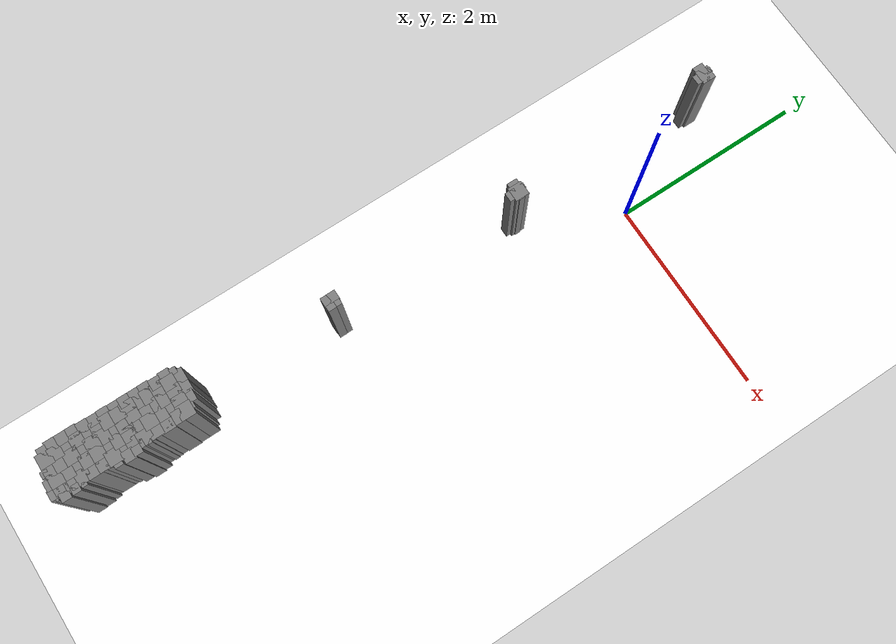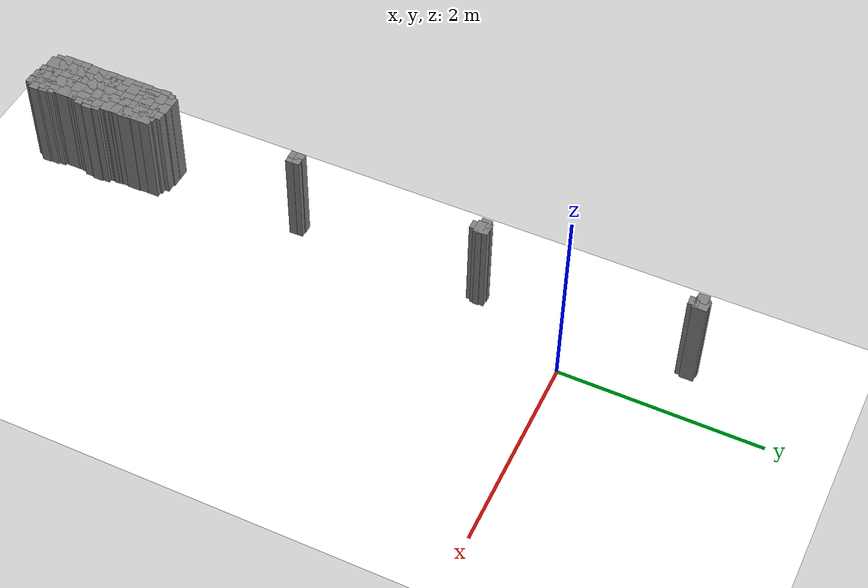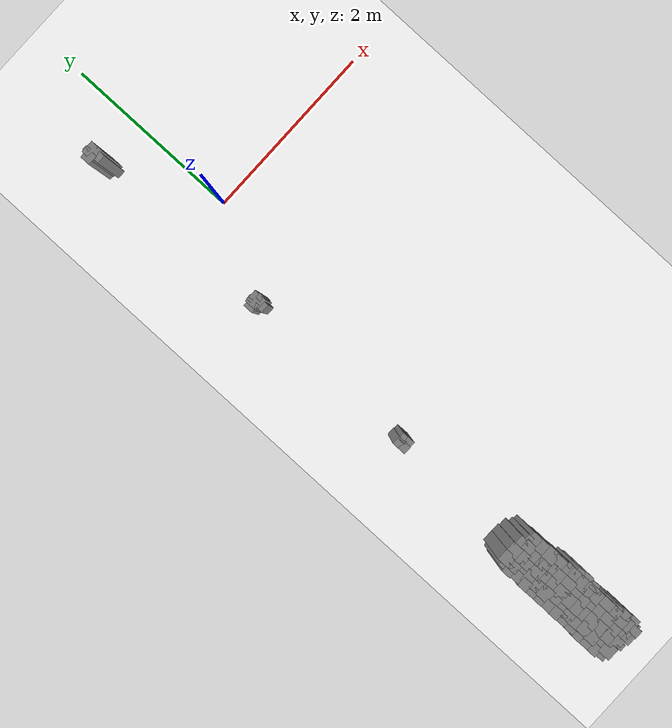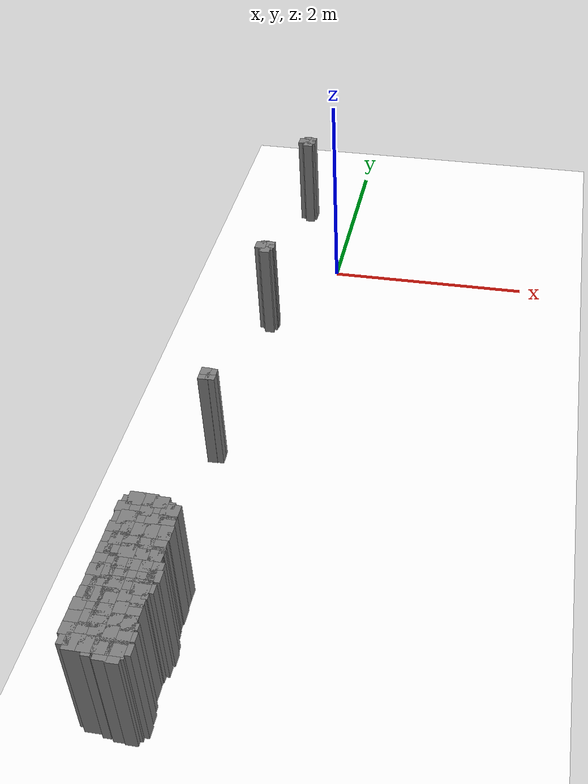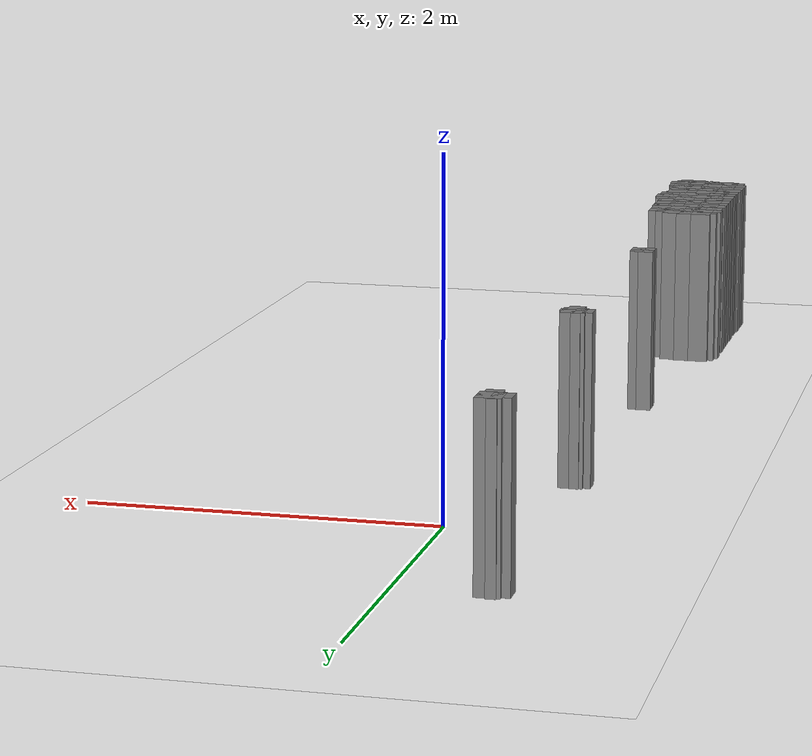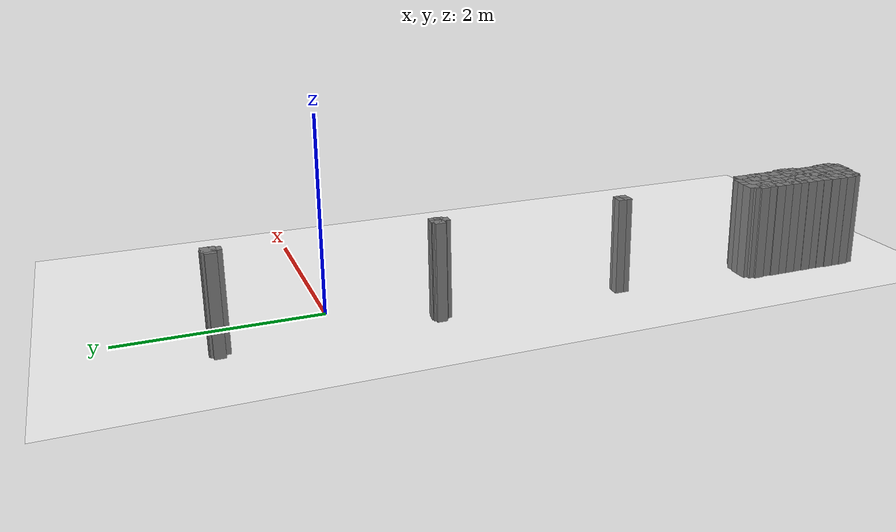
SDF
<?xml version="1.0" ?>
<sdf version="1.6">
  <world name="default">
    <model name="group_0">
      <pose>-0.56 1.09 0.5 0 0 0</pose>
      <static>true</static>
      <link name="link">
        <collision name="collision">
          <geometry>
            <box>
              <size>0.10846621290596761 0.10846621290596761 1</size>
            </box>
          </geometry>
        </collision>
        <visual name="visual">
          <geometry>
            <box>
              <size>0.10846621290596761 0.10846621290596761 1</size>
            </box>
          </geometry>
          <material>
            <ambient>0.5 0.5 0.5 1</ambient>
          </material>
        </visual>
      </link>
    </model>
    <model name="group_1">
      <pose>-0.56 1.04 0.5 0 0 0</pose>
      <static>true</static>
      <link name="link">
        <collision name="collision">
          <geometry>
            <box>
              <size>0.01779331107974701 0.01779331107974701 1</size>
            </box>
          </geometry>
        </collision>
        <visual name="visual">
          <geometry>
            <box>
              <size>0.01779331107974701 0.01779331107974701 1</size>
            </box>
          </geometry>
          <material>
            <ambient>0.5 0.5 0.5 1</ambient>
          </material>
        </visual>
      </link>
    </model>
    <model name="group_2">
      <pose>-0.50 1.10 0.5 0 0 0</pose>
      <static>true</static>
      <link name="link">
        <collision name="collision">
          <geometry>
            <box>
              <size>0.1373275872426393 0.1373275872426393 1</size>
            </box>
          </geometry>
        </collision>
        <visual name="visual">
          <geometry>
            <box>
              <size>0.1373275872426393 0.1373275872426393 1</size>
            </box>
          </geometry>
          <material>
            <ambient>0.5 0.5 0.5 1</ambient>
          </material>
        </visual>
      </link>
    </model>
    <model name="group_3">
      <pose>-0.52 1.15 0.5 0 0 0</pose>
      <static>true</static>
      <link name="link">
        <collision name="collision">
          <geometry>
            <box>
              <size>0.055814840051728404 0.055814840051728404 1</size>
            </box>
          </geometry>
        </collision>
        <visual name="visual">
          <geometry>
            <box>
              <size>0.055814840051728404 0.055814840051728404 1</size>
            </box>
          </geometry>
          <material>
            <ambient>0.5 0.5 0.5 1</ambient>
          </material>
        </visual>
      </link>
    </model>
    <model name="group_4">
      <pose>-0.50 1.03 0.5 0 0 0</pose>
      <static>true</static>
      <link name="link">
        <collision name="collision">
          <geometry>
            <box>
              <size>0.09426481850733141 0.09426481850733141 1</size>
            </box>
          </geometry>
        </collision>
        <visual name="visual">
          <geometry>
            <box>
              <size>0.09426481850733141 0.09426481850733141 1</size>
            </box>
          </geometry>
          <material>
            <ambient>0.5 0.5 0.5 1</ambient>
          </material>
        </visual>
      </link>
    </model>
    <model name="group_5">
      <pose>-0.77 -4.50 0.5 0 0 0</pose>
      <static>true</static>
      <link name="link">
        <collision name="collision">
          <geometry>
            <box>
              <size>0.10640647050192958 0.10640647050192958 1</size>
            </box>
          </geometry>
        </collision>
        <visual name="visual">
          <geometry>
            <box>
              <size>0.10640647050192958 0.10640647050192958 1</size>
            </box>
          </geometry>
          <material>
            <ambient>0.5 0.5 0.5 1</ambient>
          </material>
        </visual>
      </link>
    </model>
    <model name="group_6">
      <pose>-0.77 -4.42 0.5 0 0 0</pose>
      <static>true</static>
      <link name="link">
        <collision name="collision">
          <geometry>
            <box>
              <size>0.06263739789327895 0.06263739789327895 1</size>
            </box>
          </geometry>
        </collision>
        <visual name="visual">
          <geometry>
            <box>
              <size>0.06263739789327895 0.06263739789327895 1</size>
            </box>
          </geometry>
          <material>
            <ambient>0.5 0.5 0.5 1</ambient>
          </material>
        </visual>
      </link>
    </model>
    <model name="group_7">
      <pose>-0.77 -4.90 0.5 0 0 0</pose>
      <static>true</static>
      <link name="link">
        <collision name="collision">
          <geometry>
            <box>
              <size>0.10278978921715472 0.10278978921715472 1</size>
            </box>
          </geometry>
        </collision>
        <visual name="visual">
          <geometry>
            <box>
              <size>0.10278978921715472 0.10278978921715472 1</size>
            </box>
          </geometry>
          <material>
            <ambient>0.5 0.5 0.5 1</ambient>
          </material>
        </visual>
      </link>
    </model>
    <model name="group_8">
      <pose>-0.77 -4.80 0.5 0 0 0</pose>
      <static>true</static>
      <link name="link">
        <collision name="collision">
          <geometry>
            <box>
              <size>0.1011463659081783 0.1011463659081783 1</size>
            </box>
          </geometry>
        </collision>
        <visual name="visual">
          <geometry>
            <box>
              <size>0.1011463659081783 0.1011463659081783 1</size>
            </box>
          </geometry>
          <material>
            <ambient>0.5 0.5 0.5 1</ambient>
          </material>
        </visual>
      </link>
    </model>
    <model name="group_9">
      <pose>-0.77 -4.70 0.5 0 0 0</pose>
      <static>true</static>
      <link name="link">
        <collision name="collision">
          <geometry>
            <box>
              <size>0.10487606401113828 0.10487606401113828 1</size>
            </box>
          </geometry>
        </collision>
        <visual name="visual">
          <geometry>
            <box>
              <size>0.10487606401113828 0.10487606401113828 1</size>
            </box>
          </geometry>
          <material>
            <ambient>0.5 0.5 0.5 1</ambient>
          </material>
        </visual>
      </link>
    </model>
    <model name="group_10">
      <pose>-0.76 -4.60 0.5 0 0 0</pose>
      <static>true</static>
      <link name="link">
        <collision name="collision">
          <geometry>
            <box>
              <size>0.10485238748119301 0.10485238748119301 1</size>
            </box>
          </geometry>
        </collision>
        <visual name="visual">
          <geometry>
            <box>
              <size>0.10485238748119301 0.10485238748119301 1</size>
            </box>
          </geometry>
          <material>
            <ambient>0.5 0.5 0.5 1</ambient>
          </material>
        </visual>
      </link>
    </model>
    <model name="group_11">
      <pose>-0.56 -1.00 0.5 0 0 0</pose>
      <static>true</static>
      <link name="link">
        <collision name="collision">
          <geometry>
            <box>
              <size>0.10318755587273323 0.10318755587273323 1</size>
            </box>
          </geometry>
        </collision>
        <visual name="visual">
          <geometry>
            <box>
              <size>0.10318755587273323 0.10318755587273323 1</size>
            </box>
          </geometry>
          <material>
            <ambient>0.5 0.5 0.5 1</ambient>
          </material>
        </visual>
      </link>
    </model>
    <model name="group_12">
      <pose>-0.45 1.10 0.5 0 0 0</pose>
      <static>true</static>
      <link name="link">
        <collision name="collision">
          <geometry>
            <box>
              <size>0.03495496692460551 0.03495496692460551 1</size>
            </box>
          </geometry>
        </collision>
        <visual name="visual">
          <geometry>
            <box>
              <size>0.03495496692460551 0.03495496692460551 1</size>
            </box>
          </geometry>
          <material>
            <ambient>0.5 0.5 0.5 1</ambient>
          </material>
        </visual>
      </link>
    </model>
    <model name="group_13">
      <pose>-0.77 -5.10 0.5 0 0 0</pose>
      <static>true</static>
      <link name="link">
        <collision name="collision">
          <geometry>
            <box>
              <size>0.10752174278107636 0.10752174278107636 1</size>
            </box>
          </geometry>
        </collision>
        <visual name="visual">
          <geometry>
            <box>
              <size>0.10752174278107636 0.10752174278107636 1</size>
            </box>
          </geometry>
          <material>
            <ambient>0.5 0.5 0.5 1</ambient>
          </material>
        </visual>
      </link>
    </model>
    <model name="group_14">
      <pose>-0.77 -5.00 0.5 0 0 0</pose>
      <static>true</static>
      <link name="link">
        <collision name="collision">
          <geometry>
            <box>
              <size>0.09881197196613331 0.09881197196613331 1</size>
            </box>
          </geometry>
        </collision>
        <visual name="visual">
          <geometry>
            <box>
              <size>0.09881197196613331 0.09881197196613331 1</size>
            </box>
          </geometry>
          <material>
            <ambient>0.5 0.5 0.5 1</ambient>
          </material>
        </visual>
      </link>
    </model>
    <model name="group_15">
      <pose>-0.55 -1.06 0.5 0 0 0</pose>
      <static>true</static>
      <link name="link">
        <collision name="collision">
          <geometry>
            <box>
              <size>0.01779331107974701 0.01779331107974701 1</size>
            </box>
          </geometry>
        </collision>
        <visual name="visual">
          <geometry>
            <box>
              <size>0.01779331107974701 0.01779331107974701 1</size>
            </box>
          </geometry>
          <material>
            <ambient>0.5 0.5 0.5 1</ambient>
          </material>
        </visual>
      </link>
    </model>
    <model name="group_16">
      <pose>-0.78 -5.50 0.5 0 0 0</pose>
      <static>true</static>
      <link name="link">
        <collision name="collision">
          <geometry>
            <box>
              <size>0.10456344462860367 0.10456344462860367 1</size>
            </box>
          </geometry>
        </collision>
        <visual name="visual">
          <geometry>
            <box>
              <size>0.10456344462860367 0.10456344462860367 1</size>
            </box>
          </geometry>
          <material>
            <ambient>0.5 0.5 0.5 1</ambient>
          </material>
        </visual>
      </link>
    </model>
    <model name="group_17">
      <pose>-0.78 -5.40 0.5 0 0 0</pose>
      <static>true</static>
      <link name="link">
        <collision name="collision">
          <geometry>
            <box>
              <size>0.10675986647848676 0.10675986647848676 1</size>
            </box>
          </geometry>
        </collision>
        <visual name="visual">
          <geometry>
            <box>
              <size>0.10675986647848676 0.10675986647848676 1</size>
            </box>
          </geometry>
          <material>
            <ambient>0.5 0.5 0.5 1</ambient>
          </material>
        </visual>
      </link>
    </model>
    <model name="group_18">
      <pose>-0.77 -5.30 0.5 0 0 0</pose>
      <static>true</static>
      <link name="link">
        <collision name="collision">
          <geometry>
            <box>
              <size>0.10752174278107617 0.10752174278107617 1</size>
            </box>
          </geometry>
        </collision>
        <visual name="visual">
          <geometry>
            <box>
              <size>0.10752174278107617 0.10752174278107617 1</size>
            </box>
          </geometry>
          <material>
            <ambient>0.5 0.5 0.5 1</ambient>
          </material>
        </visual>
      </link>
    </model>
    <model name="group_19">
      <pose>-0.77 -5.20 0.5 0 0 0</pose>
      <static>true</static>
      <link name="link">
        <collision name="collision">
          <geometry>
            <box>
              <size>0.09881197196613142 0.09881197196613142 1</size>
            </box>
          </geometry>
        </collision>
        <visual name="visual">
          <geometry>
            <box>
              <size>0.09881197196613142 0.09881197196613142 1</size>
            </box>
          </geometry>
          <material>
            <ambient>0.5 0.5 0.5 1</ambient>
          </material>
        </visual>
      </link>
    </model>
    <model name="group_20">
      <pose>-0.70 -4.50 0.5 0 0 0</pose>
      <static>true</static>
      <link name="link">
        <collision name="collision">
          <geometry>
            <box>
              <size>0.12847871527930452 0.12847871527930452 1</size>
            </box>
          </geometry>
        </collision>
        <visual name="visual">
          <geometry>
            <box>
              <size>0.12847871527930452 0.12847871527930452 1</size>
            </box>
          </geometry>
          <material>
            <ambient>0.5 0.5 0.5 1</ambient>
          </material>
        </visual>
      </link>
    </model>
    <model name="group_21">
      <pose>-0.70 -4.41 0.5 0 0 0</pose>
      <static>true</static>
      <link name="link">
        <collision name="collision">
          <geometry>
            <box>
              <size>0.1284380566008964 0.1284380566008964 1</size>
            </box>
          </geometry>
        </collision>
        <visual name="visual">
          <geometry>
            <box>
              <size>0.1284380566008964 0.1284380566008964 1</size>
            </box>
          </geometry>
          <material>
            <ambient>0.5 0.5 0.5 1</ambient>
          </material>
        </visual>
      </link>
    </model>
    <model name="group_22">
      <pose>-0.50 -1.00 0.5 0 0 0</pose>
      <static>true</static>
      <link name="link">
        <collision name="collision">
          <geometry>
            <box>
              <size>0.14193066059836684 0.14193066059836684 1</size>
            </box>
          </geometry>
        </collision>
        <visual name="visual">
          <geometry>
            <box>
              <size>0.14193066059836684 0.14193066059836684 1</size>
            </box>
          </geometry>
          <material>
            <ambient>0.5 0.5 0.5 1</ambient>
          </material>
        </visual>
      </link>
    </model>
    <model name="group_23">
      <pose>-0.52 -0.95 0.5 0 0 0</pose>
      <static>true</static>
      <link name="link">
        <collision name="collision">
          <geometry>
            <box>
              <size>0.055814840051728536 0.055814840051728536 1</size>
            </box>
          </geometry>
        </collision>
        <visual name="visual">
          <geometry>
            <box>
              <size>0.055814840051728536 0.055814840051728536 1</size>
            </box>
          </geometry>
          <material>
            <ambient>0.5 0.5 0.5 1</ambient>
          </material>
        </visual>
      </link>
    </model>
    <model name="group_24">
      <pose>-0.78 -5.60 0.5 0 0 0</pose>
      <static>true</static>
      <link name="link">
        <collision name="collision">
          <geometry>
            <box>
              <size>0.10736999835150011 0.10736999835150011 1</size>
            </box>
          </geometry>
        </collision>
        <visual name="visual">
          <geometry>
            <box>
              <size>0.10736999835150011 0.10736999835150011 1</size>
            </box>
          </geometry>
          <material>
            <ambient>0.5 0.5 0.5 1</ambient>
          </material>
        </visual>
      </link>
    </model>
    <model name="group_25">
      <pose>-0.70 -4.70 0.5 0 0 0</pose>
      <static>true</static>
      <link name="link">
        <collision name="collision">
          <geometry>
            <box>
              <size>0.13736640136554099 0.13736640136554099 1</size>
            </box>
          </geometry>
        </collision>
        <visual name="visual">
          <geometry>
            <box>
              <size>0.13736640136554099 0.13736640136554099 1</size>
            </box>
          </geometry>
          <material>
            <ambient>0.5 0.5 0.5 1</ambient>
          </material>
        </visual>
      </link>
    </model>
    <model name="group_26">
      <pose>-0.70 -4.60 0.5 0 0 0</pose>
      <static>true</static>
      <link name="link">
        <collision name="collision">
          <geometry>
            <box>
              <size>0.13697679180245897 0.13697679180245897 1</size>
            </box>
          </geometry>
        </collision>
        <visual name="visual">
          <geometry>
            <box>
              <size>0.13697679180245897 0.13697679180245897 1</size>
            </box>
          </geometry>
          <material>
            <ambient>0.5 0.5 0.5 1</ambient>
          </material>
        </visual>
      </link>
    </model>
    <model name="group_27">
      <pose>-0.50 -1.07 0.5 0 0 0</pose>
      <static>true</static>
      <link name="link">
        <collision name="collision">
          <geometry>
            <box>
              <size>0.0942648185073315 0.0942648185073315 1</size>
            </box>
          </geometry>
        </collision>
        <visual name="visual">
          <geometry>
            <box>
              <size>0.0942648185073315 0.0942648185073315 1</size>
            </box>
          </geometry>
          <material>
            <ambient>0.5 0.5 0.5 1</ambient>
          </material>
        </visual>
      </link>
    </model>
    <model name="group_28">
      <pose>-0.77 -5.69 0.5 0 0 0</pose>
      <static>true</static>
      <link name="link">
        <collision name="collision">
          <geometry>
            <box>
              <size>0.08752847982169377 0.08752847982169377 1</size>
            </box>
          </geometry>
        </collision>
        <visual name="visual">
          <geometry>
            <box>
              <size>0.08752847982169377 0.08752847982169377 1</size>
            </box>
          </geometry>
          <material>
            <ambient>0.5 0.5 0.5 1</ambient>
          </material>
        </visual>
      </link>
    </model>
    <model name="group_29">
      <pose>-0.70 -4.90 0.5 0 0 0</pose>
      <static>true</static>
      <link name="link">
        <collision name="collision">
          <geometry>
            <box>
              <size>0.13622161737658786 0.13622161737658786 1</size>
            </box>
          </geometry>
        </collision>
        <visual name="visual">
          <geometry>
            <box>
              <size>0.13622161737658786 0.13622161737658786 1</size>
            </box>
          </geometry>
          <material>
            <ambient>0.5 0.5 0.5 1</ambient>
          </material>
        </visual>
      </link>
    </model>
    <model name="group_30">
      <pose>-0.70 -4.80 0.5 0 0 0</pose>
      <static>true</static>
      <link name="link">
        <collision name="collision">
          <geometry>
            <box>
              <size>0.12417966687291751 0.12417966687291751 1</size>
            </box>
          </geometry>
        </collision>
        <visual name="visual">
          <geometry>
            <box>
              <size>0.12417966687291751 0.12417966687291751 1</size>
            </box>
          </geometry>
          <material>
            <ambient>0.5 0.5 0.5 1</ambient>
          </material>
        </visual>
      </link>
    </model>
    <model name="group_31">
      <pose>-0.70 -5.10 0.5 0 0 0</pose>
      <static>true</static>
      <link name="link">
        <collision name="collision">
          <geometry>
            <box>
              <size>0.13512316920300252 0.13512316920300252 1</size>
            </box>
          </geometry>
        </collision>
        <visual name="visual">
          <geometry>
            <box>
              <size>0.13512316920300252 0.13512316920300252 1</size>
            </box>
          </geometry>
          <material>
            <ambient>0.5 0.5 0.5 1</ambient>
          </material>
        </visual>
      </link>
    </model>
    <model name="group_32">
      <pose>-0.70 -5.00 0.5 0 0 0</pose>
      <static>true</static>
      <link name="link">
        <collision name="collision">
          <geometry>
            <box>
              <size>0.12389432661931286 0.12389432661931286 1</size>
            </box>
          </geometry>
        </collision>
        <visual name="visual">
          <geometry>
            <box>
              <size>0.12389432661931286 0.12389432661931286 1</size>
            </box>
          </geometry>
          <material>
            <ambient>0.5 0.5 0.5 1</ambient>
          </material>
        </visual>
      </link>
    </model>
    <model name="group_33">
      <pose>-0.70 -5.30 0.5 0 0 0</pose>
      <static>true</static>
      <link name="link">
        <collision name="collision">
          <geometry>
            <box>
              <size>0.13565471752386224 0.13565471752386224 1</size>
            </box>
          </geometry>
        </collision>
        <visual name="visual">
          <geometry>
            <box>
              <size>0.13565471752386224 0.13565471752386224 1</size>
            </box>
          </geometry>
          <material>
            <ambient>0.5 0.5 0.5 1</ambient>
          </material>
        </visual>
      </link>
    </model>
    <model name="group_34">
      <pose>-0.70 -5.20 0.5 0 0 0</pose>
      <static>true</static>
      <link name="link">
        <collision name="collision">
          <geometry>
            <box>
              <size>0.12389432661931538 0.12389432661931538 1</size>
            </box>
          </geometry>
        </collision>
        <visual name="visual">
          <geometry>
            <box>
              <size>0.12389432661931538 0.12389432661931538 1</size>
            </box>
          </geometry>
          <material>
            <ambient>0.5 0.5 0.5 1</ambient>
          </material>
        </visual>
      </link>
    </model>
    <model name="group_35">
      <pose>-0.58 -2.98 0.5 0 0 0</pose>
      <static>true</static>
      <link name="link">
        <collision name="collision">
          <geometry>
            <box>
              <size>0.0900762334629447 0.0900762334629447 1</size>
            </box>
          </geometry>
        </collision>
        <visual name="visual">
          <geometry>
            <box>
              <size>0.0900762334629447 0.0900762334629447 1</size>
            </box>
          </geometry>
          <material>
            <ambient>0.5 0.5 0.5 1</ambient>
          </material>
        </visual>
      </link>
    </model>
    <model name="group_36">
      <pose>-0.58 -2.92 0.5 0 0 0</pose>
      <static>true</static>
      <link name="link">
        <collision name="collision">
          <geometry>
            <box>
              <size>0.09080988017727099 0.09080988017727099 1</size>
            </box>
          </geometry>
        </collision>
        <visual name="visual">
          <geometry>
            <box>
              <size>0.09080988017727099 0.09080988017727099 1</size>
            </box>
          </geometry>
          <material>
            <ambient>0.5 0.5 0.5 1</ambient>
          </material>
        </visual>
      </link>
    </model>
    <model name="group_37">
      <pose>-0.70 -5.50 0.5 0 0 0</pose>
      <static>true</static>
      <link name="link">
        <collision name="collision">
          <geometry>
            <box>
              <size>0.13808311158966338 0.13808311158966338 1</size>
            </box>
          </geometry>
        </collision>
        <visual name="visual">
          <geometry>
            <box>
              <size>0.13808311158966338 0.13808311158966338 1</size>
            </box>
          </geometry>
          <material>
            <ambient>0.5 0.5 0.5 1</ambient>
          </material>
        </visual>
      </link>
    </model>
    <model name="group_38">
      <pose>-0.70 -5.40 0.5 0 0 0</pose>
      <static>true</static>
      <link name="link">
        <collision name="collision">
          <geometry>
            <box>
              <size>0.12389432661931521 0.12389432661931521 1</size>
            </box>
          </geometry>
        </collision>
        <visual name="visual">
          <geometry>
            <box>
              <size>0.12389432661931521 0.12389432661931521 1</size>
            </box>
          </geometry>
          <material>
            <ambient>0.5 0.5 0.5 1</ambient>
          </material>
        </visual>
      </link>
    </model>
    <model name="group_39">
      <pose>-0.70 -5.70 0.5 0 0 0</pose>
      <static>true</static>
      <link name="link">
        <collision name="collision">
          <geometry>
            <box>
              <size>0.13731039260981232 0.13731039260981232 1</size>
            </box>
          </geometry>
        </collision>
        <visual name="visual">
          <geometry>
            <box>
              <size>0.13731039260981232 0.13731039260981232 1</size>
            </box>
          </geometry>
          <material>
            <ambient>0.5 0.5 0.5 1</ambient>
          </material>
        </visual>
      </link>
    </model>
    <model name="group_40">
      <pose>-0.70 -5.60 0.5 0 0 0</pose>
      <static>true</static>
      <link name="link">
        <collision name="collision">
          <geometry>
            <box>
              <size>0.12389432661931789 0.12389432661931789 1</size>
            </box>
          </geometry>
        </collision>
        <visual name="visual">
          <geometry>
            <box>
              <size>0.12389432661931789 0.12389432661931789 1</size>
            </box>
          </geometry>
          <material>
            <ambient>0.5 0.5 0.5 1</ambient>
          </material>
        </visual>
      </link>
    </model>
    <model name="group_41">
      <pose>-0.60 -4.50 0.5 0 0 0</pose>
      <static>true</static>
      <link name="link">
        <collision name="collision">
          <geometry>
            <box>
              <size>0.1313211945582409 0.1313211945582409 1</size>
            </box>
          </geometry>
        </collision>
        <visual name="visual">
          <geometry>
            <box>
              <size>0.1313211945582409 0.1313211945582409 1</size>
            </box>
          </geometry>
          <material>
            <ambient>0.5 0.5 0.5 1</ambient>
          </material>
        </visual>
      </link>
    </model>
    <model name="group_42">
      <pose>-0.60 -4.41 0.5 0 0 0</pose>
      <static>true</static>
      <link name="link">
        <collision name="collision">
          <geometry>
            <box>
              <size>0.12342417544413818 0.12342417544413818 1</size>
            </box>
          </geometry>
        </collision>
        <visual name="visual">
          <geometry>
            <box>
              <size>0.12342417544413818 0.12342417544413818 1</size>
            </box>
          </geometry>
          <material>
            <ambient>0.5 0.5 0.5 1</ambient>
          </material>
        </visual>
      </link>
    </model>
    <model name="group_43">
      <pose>-0.45 -1.01 0.5 0 0 0</pose>
      <static>true</static>
      <link name="link">
        <collision name="collision">
          <geometry>
            <box>
              <size>0.05825827820767714 0.05825827820767714 1</size>
            </box>
          </geometry>
        </collision>
        <visual name="visual">
          <geometry>
            <box>
              <size>0.05825827820767714 0.05825827820767714 1</size>
            </box>
          </geometry>
          <material>
            <ambient>0.5 0.5 0.5 1</ambient>
          </material>
        </visual>
      </link>
    </model>
    <model name="group_44">
      <pose>-0.60 -4.70 0.5 0 0 0</pose>
      <static>true</static>
      <link name="link">
        <collision name="collision">
          <geometry>
            <box>
              <size>0.1277403387128315 0.1277403387128315 1</size>
            </box>
          </geometry>
        </collision>
        <visual name="visual">
          <geometry>
            <box>
              <size>0.1277403387128315 0.1277403387128315 1</size>
            </box>
          </geometry>
          <material>
            <ambient>0.5 0.5 0.5 1</ambient>
          </material>
        </visual>
      </link>
    </model>
    <model name="group_45">
      <pose>-0.60 -4.60 0.5 0 0 0</pose>
      <static>true</static>
      <link name="link">
        <collision name="collision">
          <geometry>
            <box>
              <size>0.13292050672749367 0.13292050672749367 1</size>
            </box>
          </geometry>
        </collision>
        <visual name="visual">
          <geometry>
            <box>
              <size>0.13292050672749367 0.13292050672749367 1</size>
            </box>
          </geometry>
          <material>
            <ambient>0.5 0.5 0.5 1</ambient>
          </material>
        </visual>
      </link>
    </model>
    <model name="group_46">
      <pose>-0.52 -2.98 0.5 0 0 0</pose>
      <static>true</static>
      <link name="link">
        <collision name="collision">
          <geometry>
            <box>
              <size>0.0818268348694776 0.0818268348694776 1</size>
            </box>
          </geometry>
        </collision>
        <visual name="visual">
          <geometry>
            <box>
              <size>0.0818268348694776 0.0818268348694776 1</size>
            </box>
          </geometry>
          <material>
            <ambient>0.5 0.5 0.5 1</ambient>
          </material>
        </visual>
      </link>
    </model>
    <model name="group_47">
      <pose>-0.52 -2.92 0.5 0 0 0</pose>
      <static>true</static>
      <link name="link">
        <collision name="collision">
          <geometry>
            <box>
              <size>0.076967835417764 0.076967835417764 1</size>
            </box>
          </geometry>
        </collision>
        <visual name="visual">
          <geometry>
            <box>
              <size>0.076967835417764 0.076967835417764 1</size>
            </box>
          </geometry>
          <material>
            <ambient>0.5 0.5 0.5 1</ambient>
          </material>
        </visual>
      </link>
    </model>
    <model name="group_48">
      <pose>-0.60 -4.90 0.5 0 0 0</pose>
      <static>true</static>
      <link name="link">
        <collision name="collision">
          <geometry>
            <box>
              <size>0.12774033871283286 0.12774033871283286 1</size>
            </box>
          </geometry>
        </collision>
        <visual name="visual">
          <geometry>
            <box>
              <size>0.12774033871283286 0.12774033871283286 1</size>
            </box>
          </geometry>
          <material>
            <ambient>0.5 0.5 0.5 1</ambient>
          </material>
        </visual>
      </link>
    </model>
    <model name="group_49">
      <pose>-0.60 -4.80 0.5 0 0 0</pose>
      <static>true</static>
      <link name="link">
        <collision name="collision">
          <geometry>
            <box>
              <size>0.1342788522191303 0.1342788522191303 1</size>
            </box>
          </geometry>
        </collision>
        <visual name="visual">
          <geometry>
            <box>
              <size>0.1342788522191303 0.1342788522191303 1</size>
            </box>
          </geometry>
          <material>
            <ambient>0.5 0.5 0.5 1</ambient>
          </material>
        </visual>
      </link>
    </model>
    <model name="group_50">
      <pose>-0.60 -5.10 0.5 0 0 0</pose>
      <static>true</static>
      <link name="link">
        <collision name="collision">
          <geometry>
            <box>
              <size>0.13130358808738585 0.13130358808738585 1</size>
            </box>
          </geometry>
        </collision>
        <visual name="visual">
          <geometry>
            <box>
              <size>0.13130358808738585 0.13130358808738585 1</size>
            </box>
          </geometry>
          <material>
            <ambient>0.5 0.5 0.5 1</ambient>
          </material>
        </visual>
      </link>
    </model>
    <model name="group_51">
      <pose>-0.60 -5.00 0.5 0 0 0</pose>
      <static>true</static>
      <link name="link">
        <collision name="collision">
          <geometry>
            <box>
              <size>0.1342788522191267 0.1342788522191267 1</size>
            </box>
          </geometry>
        </collision>
        <visual name="visual">
          <geometry>
            <box>
              <size>0.1342788522191267 0.1342788522191267 1</size>
            </box>
          </geometry>
          <material>
            <ambient>0.5 0.5 0.5 1</ambient>
          </material>
        </visual>
      </link>
    </model>
    <model name="group_52">
      <pose>-0.60 -5.30 0.5 0 0 0</pose>
      <static>true</static>
      <link name="link">
        <collision name="collision">
          <geometry>
            <box>
              <size>0.1323159227331806 0.1323159227331806 1</size>
            </box>
          </geometry>
        </collision>
        <visual name="visual">
          <geometry>
            <box>
              <size>0.1323159227331806 0.1323159227331806 1</size>
            </box>
          </geometry>
          <material>
            <ambient>0.5 0.5 0.5 1</ambient>
          </material>
        </visual>
      </link>
    </model>
    <model name="group_53">
      <pose>-0.60 -5.20 0.5 0 0 0</pose>
      <static>true</static>
      <link name="link">
        <collision name="collision">
          <geometry>
            <box>
              <size>0.13679944612788322 0.13679944612788322 1</size>
            </box>
          </geometry>
        </collision>
        <visual name="visual">
          <geometry>
            <box>
              <size>0.13679944612788322 0.13679944612788322 1</size>
            </box>
          </geometry>
          <material>
            <ambient>0.5 0.5 0.5 1</ambient>
          </material>
        </visual>
      </link>
    </model>
    <model name="group_54">
      <pose>-0.60 -5.50 0.5 0 0 0</pose>
      <static>true</static>
      <link name="link">
        <collision name="collision">
          <geometry>
            <box>
              <size>0.1342689893764419 0.1342689893764419 1</size>
            </box>
          </geometry>
        </collision>
        <visual name="visual">
          <geometry>
            <box>
              <size>0.1342689893764419 0.1342689893764419 1</size>
            </box>
          </geometry>
          <material>
            <ambient>0.5 0.5 0.5 1</ambient>
          </material>
        </visual>
      </link>
    </model>
    <model name="group_55">
      <pose>-0.60 -5.40 0.5 0 0 0</pose>
      <static>true</static>
      <link name="link">
        <collision name="collision">
          <geometry>
            <box>
              <size>0.13697679180246183 0.13697679180246183 1</size>
            </box>
          </geometry>
        </collision>
        <visual name="visual">
          <geometry>
            <box>
              <size>0.13697679180246183 0.13697679180246183 1</size>
            </box>
          </geometry>
          <material>
            <ambient>0.5 0.5 0.5 1</ambient>
          </material>
        </visual>
      </link>
    </model>
    <model name="group_56">
      <pose>-0.60 -5.70 0.5 0 0 0</pose>
      <static>true</static>
      <link name="link">
        <collision name="collision">
          <geometry>
            <box>
              <size>0.13701709375919224 0.13701709375919224 1</size>
            </box>
          </geometry>
        </collision>
        <visual name="visual">
          <geometry>
            <box>
              <size>0.13701709375919224 0.13701709375919224 1</size>
            </box>
          </geometry>
          <material>
            <ambient>0.5 0.5 0.5 1</ambient>
          </material>
        </visual>
      </link>
    </model>
    <model name="group_57">
      <pose>-0.60 -5.60 0.5 0 0 0</pose>
      <static>true</static>
      <link name="link">
        <collision name="collision">
          <geometry>
            <box>
              <size>0.1377628913019406 0.1377628913019406 1</size>
            </box>
          </geometry>
        </collision>
        <visual name="visual">
          <geometry>
            <box>
              <size>0.1377628913019406 0.1377628913019406 1</size>
            </box>
          </geometry>
          <material>
            <ambient>0.5 0.5 0.5 1</ambient>
          </material>
        </visual>
      </link>
    </model>
    <model name="group_58">
      <pose>-0.59 -5.76 0.5 0 0 0</pose>
      <static>true</static>
      <link name="link">
        <collision name="collision">
          <geometry>
            <box>
              <size>0.06697780806207403 0.06697780806207403 1</size>
            </box>
          </geometry>
        </collision>
        <visual name="visual">
          <geometry>
            <box>
              <size>0.06697780806207403 0.06697780806207403 1</size>
            </box>
          </geometry>
          <material>
            <ambient>0.5 0.5 0.5 1</ambient>
          </material>
        </visual>
      </link>
    </model>
    <model name="group_59">
      <pose>-0.50 -4.50 0.5 0 0 0</pose>
      <static>true</static>
      <link name="link">
        <collision name="collision">
          <geometry>
            <box>
              <size>0.1352971661710618 0.1352971661710618 1</size>
            </box>
          </geometry>
        </collision>
        <visual name="visual">
          <geometry>
            <box>
              <size>0.1352971661710618 0.1352971661710618 1</size>
            </box>
          </geometry>
          <material>
            <ambient>0.5 0.5 0.5 1</ambient>
          </material>
        </visual>
      </link>
    </model>
    <model name="group_60">
      <pose>-0.50 -4.42 0.5 0 0 0</pose>
      <static>true</static>
      <link name="link">
        <collision name="collision">
          <geometry>
            <box>
              <size>0.11384686995043776 0.11384686995043776 1</size>
            </box>
          </geometry>
        </collision>
        <visual name="visual">
          <geometry>
            <box>
              <size>0.11384686995043776 0.11384686995043776 1</size>
            </box>
          </geometry>
          <material>
            <ambient>0.5 0.5 0.5 1</ambient>
          </material>
        </visual>
      </link>
    </model>
    <model name="group_61">
      <pose>-0.50 -4.70 0.5 0 0 0</pose>
      <static>true</static>
      <link name="link">
        <collision name="collision">
          <geometry>
            <box>
              <size>0.13312823112185945 0.13312823112185945 1</size>
            </box>
          </geometry>
        </collision>
        <visual name="visual">
          <geometry>
            <box>
              <size>0.13312823112185945 0.13312823112185945 1</size>
            </box>
          </geometry>
          <material>
            <ambient>0.5 0.5 0.5 1</ambient>
          </material>
        </visual>
      </link>
    </model>
    <model name="group_62">
      <pose>-0.50 -4.60 0.5 0 0 0</pose>
      <static>true</static>
      <link name="link">
        <collision name="collision">
          <geometry>
            <box>
              <size>0.1342788522191292 0.1342788522191292 1</size>
            </box>
          </geometry>
        </collision>
        <visual name="visual">
          <geometry>
            <box>
              <size>0.1342788522191292 0.1342788522191292 1</size>
            </box>
          </geometry>
          <material>
            <ambient>0.5 0.5 0.5 1</ambient>
          </material>
        </visual>
      </link>
    </model>
    <model name="group_63">
      <pose>-0.50 -4.90 0.5 0 0 0</pose>
      <static>true</static>
      <link name="link">
        <collision name="collision">
          <geometry>
            <box>
              <size>0.13058688956222478 0.13058688956222478 1</size>
            </box>
          </geometry>
        </collision>
        <visual name="visual">
          <geometry>
            <box>
              <size>0.13058688956222478 0.13058688956222478 1</size>
            </box>
          </geometry>
          <material>
            <ambient>0.5 0.5 0.5 1</ambient>
          </material>
        </visual>
      </link>
    </model>
    <model name="group_64">
      <pose>-0.50 -4.80 0.5 0 0 0</pose>
      <static>true</static>
      <link name="link">
        <collision name="collision">
          <geometry>
            <box>
              <size>0.13427885221912914 0.13427885221912914 1</size>
            </box>
          </geometry>
        </collision>
        <visual name="visual">
          <geometry>
            <box>
              <size>0.13427885221912914 0.13427885221912914 1</size>
            </box>
          </geometry>
          <material>
            <ambient>0.5 0.5 0.5 1</ambient>
          </material>
        </visual>
      </link>
    </model>
    <model name="group_65">
      <pose>-0.50 -5.10 0.5 0 0 0</pose>
      <static>true</static>
      <link name="link">
        <collision name="collision">
          <geometry>
            <box>
              <size>0.12835441713348494 0.12835441713348494 1</size>
            </box>
          </geometry>
        </collision>
        <visual name="visual">
          <geometry>
            <box>
              <size>0.12835441713348494 0.12835441713348494 1</size>
            </box>
          </geometry>
          <material>
            <ambient>0.5 0.5 0.5 1</ambient>
          </material>
        </visual>
      </link>
    </model>
    <model name="group_66">
      <pose>-0.50 -5.00 0.5 0 0 0</pose>
      <static>true</static>
      <link name="link">
        <collision name="collision">
          <geometry>
            <box>
              <size>0.13176749539956498 0.13176749539956498 1</size>
            </box>
          </geometry>
        </collision>
        <visual name="visual">
          <geometry>
            <box>
              <size>0.13176749539956498 0.13176749539956498 1</size>
            </box>
          </geometry>
          <material>
            <ambient>0.5 0.5 0.5 1</ambient>
          </material>
        </visual>
      </link>
    </model>
    <model name="group_67">
      <pose>-0.50 -5.30 0.5 0 0 0</pose>
      <static>true</static>
      <link name="link">
        <collision name="collision">
          <geometry>
            <box>
              <size>0.12723132101736256 0.12723132101736256 1</size>
            </box>
          </geometry>
        </collision>
        <visual name="visual">
          <geometry>
            <box>
              <size>0.12723132101736256 0.12723132101736256 1</size>
            </box>
          </geometry>
          <material>
            <ambient>0.5 0.5 0.5 1</ambient>
          </material>
        </visual>
      </link>
    </model>
    <model name="group_68">
      <pose>-0.50 -5.20 0.5 0 0 0</pose>
      <static>true</static>
      <link name="link">
        <collision name="collision">
          <geometry>
            <box>
              <size>0.13176749539956306 0.13176749539956306 1</size>
            </box>
          </geometry>
        </collision>
        <visual name="visual">
          <geometry>
            <box>
              <size>0.13176749539956306 0.13176749539956306 1</size>
            </box>
          </geometry>
          <material>
            <ambient>0.5 0.5 0.5 1</ambient>
          </material>
        </visual>
      </link>
    </model>
    <model name="group_69">
      <pose>-0.50 -5.50 0.5 0 0 0</pose>
      <static>true</static>
      <link name="link">
        <collision name="collision">
          <geometry>
            <box>
              <size>0.12970938275581104 0.12970938275581104 1</size>
            </box>
          </geometry>
        </collision>
        <visual name="visual">
          <geometry>
            <box>
              <size>0.12970938275581104 0.12970938275581104 1</size>
            </box>
          </geometry>
          <material>
            <ambient>0.5 0.5 0.5 1</ambient>
          </material>
        </visual>
      </link>
    </model>
    <model name="group_70">
      <pose>-0.50 -5.40 0.5 0 0 0</pose>
      <static>true</static>
      <link name="link">
        <collision name="collision">
          <geometry>
            <box>
              <size>0.13176749539956306 0.13176749539956306 1</size>
            </box>
          </geometry>
        </collision>
        <visual name="visual">
          <geometry>
            <box>
              <size>0.13176749539956306 0.13176749539956306 1</size>
            </box>
          </geometry>
          <material>
            <ambient>0.5 0.5 0.5 1</ambient>
          </material>
        </visual>
      </link>
    </model>
    <model name="group_71">
      <pose>-0.50 -5.70 0.5 0 0 0</pose>
      <static>true</static>
      <link name="link">
        <collision name="collision">
          <geometry>
            <box>
              <size>0.13175274321959493 0.13175274321959493 1</size>
            </box>
          </geometry>
        </collision>
        <visual name="visual">
          <geometry>
            <box>
              <size>0.13175274321959493 0.13175274321959493 1</size>
            </box>
          </geometry>
          <material>
            <ambient>0.5 0.5 0.5 1</ambient>
          </material>
        </visual>
      </link>
    </model>
    <model name="group_72">
      <pose>-0.50 -5.60 0.5 0 0 0</pose>
      <static>true</static>
      <link name="link">
        <collision name="collision">
          <geometry>
            <box>
              <size>0.13427885221912875 0.13427885221912875 1</size>
            </box>
          </geometry>
        </collision>
        <visual name="visual">
          <geometry>
            <box>
              <size>0.13427885221912875 0.13427885221912875 1</size>
            </box>
          </geometry>
          <material>
            <ambient>0.5 0.5 0.5 1</ambient>
          </material>
        </visual>
      </link>
    </model>
    <model name="group_73">
      <pose>-0.49 -5.76 0.5 0 0 0</pose>
      <static>true</static>
      <link name="link">
        <collision name="collision">
          <geometry>
            <box>
              <size>0.1020007831180423 0.1020007831180423 1</size>
            </box>
          </geometry>
        </collision>
        <visual name="visual">
          <geometry>
            <box>
              <size>0.1020007831180423 0.1020007831180423 1</size>
            </box>
          </geometry>
          <material>
            <ambient>0.5 0.5 0.5 1</ambient>
          </material>
        </visual>
      </link>
    </model>
    <model name="group_74">
      <pose>-0.41 -4.50 0.5 0 0 0</pose>
      <static>true</static>
      <link name="link">
        <collision name="collision">
          <geometry>
            <box>
              <size>0.14326532844936665 0.14326532844936665 1</size>
            </box>
          </geometry>
        </collision>
        <visual name="visual">
          <geometry>
            <box>
              <size>0.14326532844936665 0.14326532844936665 1</size>
            </box>
          </geometry>
          <material>
            <ambient>0.5 0.5 0.5 1</ambient>
          </material>
        </visual>
      </link>
    </model>
    <model name="group_75">
      <pose>-0.42 -4.44 0.5 0 0 0</pose>
      <static>true</static>
      <link name="link">
        <collision name="collision">
          <geometry>
            <box>
              <size>0.06269355016973764 0.06269355016973764 1</size>
            </box>
          </geometry>
        </collision>
        <visual name="visual">
          <geometry>
            <box>
              <size>0.06269355016973764 0.06269355016973764 1</size>
            </box>
          </geometry>
          <material>
            <ambient>0.5 0.5 0.5 1</ambient>
          </material>
        </visual>
      </link>
    </model>
    <model name="group_76">
      <pose>-0.40 -4.70 0.5 0 0 0</pose>
      <static>true</static>
      <link name="link">
        <collision name="collision">
          <geometry>
            <box>
              <size>0.1389326578130797 0.1389326578130797 1</size>
            </box>
          </geometry>
        </collision>
        <visual name="visual">
          <geometry>
            <box>
              <size>0.1389326578130797 0.1389326578130797 1</size>
            </box>
          </geometry>
          <material>
            <ambient>0.5 0.5 0.5 1</ambient>
          </material>
        </visual>
      </link>
    </model>
    <model name="group_77">
      <pose>-0.40 -4.60 0.5 0 0 0</pose>
      <static>true</static>
      <link name="link">
        <collision name="collision">
          <geometry>
            <box>
              <size>0.12389432661931747 0.12389432661931747 1</size>
            </box>
          </geometry>
        </collision>
        <visual name="visual">
          <geometry>
            <box>
              <size>0.12389432661931747 0.12389432661931747 1</size>
            </box>
          </geometry>
          <material>
            <ambient>0.5 0.5 0.5 1</ambient>
          </material>
        </visual>
      </link>
    </model>
    <model name="group_78">
      <pose>-0.40 -4.90 0.5 0 0 0</pose>
      <static>true</static>
      <link name="link">
        <collision name="collision">
          <geometry>
            <box>
              <size>0.13599839431531469 0.13599839431531469 1</size>
            </box>
          </geometry>
        </collision>
        <visual name="visual">
          <geometry>
            <box>
              <size>0.13599839431531469 0.13599839431531469 1</size>
            </box>
          </geometry>
          <material>
            <ambient>0.5 0.5 0.5 1</ambient>
          </material>
        </visual>
      </link>
    </model>
    <model name="group_79">
      <pose>-0.40 -4.80 0.5 0 0 0</pose>
      <static>true</static>
      <link name="link">
        <collision name="collision">
          <geometry>
            <box>
              <size>0.12417966687291963 0.12417966687291963 1</size>
            </box>
          </geometry>
        </collision>
        <visual name="visual">
          <geometry>
            <box>
              <size>0.12417966687291963 0.12417966687291963 1</size>
            </box>
          </geometry>
          <material>
            <ambient>0.5 0.5 0.5 1</ambient>
          </material>
        </visual>
      </link>
    </model>
    <model name="group_80">
      <pose>-0.40 -5.10 0.5 0 0 0</pose>
      <static>true</static>
      <link name="link">
        <collision name="collision">
          <geometry>
            <box>
              <size>0.13426898937643703 0.13426898937643703 1</size>
            </box>
          </geometry>
        </collision>
        <visual name="visual">
          <geometry>
            <box>
              <size>0.13426898937643703 0.13426898937643703 1</size>
            </box>
          </geometry>
          <material>
            <ambient>0.5 0.5 0.5 1</ambient>
          </material>
        </visual>
      </link>
    </model>
    <model name="group_81">
      <pose>-0.40 -5.00 0.5 0 0 0</pose>
      <static>true</static>
      <link name="link">
        <collision name="collision">
          <geometry>
            <box>
              <size>0.13697679180246464 0.13697679180246464 1</size>
            </box>
          </geometry>
        </collision>
        <visual name="visual">
          <geometry>
            <box>
              <size>0.13697679180246464 0.13697679180246464 1</size>
            </box>
          </geometry>
          <material>
            <ambient>0.5 0.5 0.5 1</ambient>
          </material>
        </visual>
      </link>
    </model>
    <model name="group_82">
      <pose>-0.40 -5.30 0.5 0 0 0</pose>
      <static>true</static>
      <link name="link">
        <collision name="collision">
          <geometry>
            <box>
              <size>0.1313035880873867 0.1313035880873867 1</size>
            </box>
          </geometry>
        </collision>
        <visual name="visual">
          <geometry>
            <box>
              <size>0.1313035880873867 0.1313035880873867 1</size>
            </box>
          </geometry>
          <material>
            <ambient>0.5 0.5 0.5 1</ambient>
          </material>
        </visual>
      </link>
    </model>
    <model name="group_83">
      <pose>-0.40 -5.20 0.5 0 0 0</pose>
      <static>true</static>
      <link name="link">
        <collision name="collision">
          <geometry>
            <box>
              <size>0.1367994461278834 0.1367994461278834 1</size>
            </box>
          </geometry>
        </collision>
        <visual name="visual">
          <geometry>
            <box>
              <size>0.1367994461278834 0.1367994461278834 1</size>
            </box>
          </geometry>
          <material>
            <ambient>0.5 0.5 0.5 1</ambient>
          </material>
        </visual>
      </link>
    </model>
    <model name="group_84">
      <pose>-0.40 -5.50 0.5 0 0 0</pose>
      <static>true</static>
      <link name="link">
        <collision name="collision">
          <geometry>
            <box>
              <size>0.12973528825043837 0.12973528825043837 1</size>
            </box>
          </geometry>
        </collision>
        <visual name="visual">
          <geometry>
            <box>
              <size>0.12973528825043837 0.12973528825043837 1</size>
            </box>
          </geometry>
          <material>
            <ambient>0.5 0.5 0.5 1</ambient>
          </material>
        </visual>
      </link>
    </model>
    <model name="group_85">
      <pose>-0.40 -5.40 0.5 0 0 0</pose>
      <static>true</static>
      <link name="link">
        <collision name="collision">
          <geometry>
            <box>
              <size>0.13427885221912647 0.13427885221912647 1</size>
            </box>
          </geometry>
        </collision>
        <visual name="visual">
          <geometry>
            <box>
              <size>0.13427885221912647 0.13427885221912647 1</size>
            </box>
          </geometry>
          <material>
            <ambient>0.5 0.5 0.5 1</ambient>
          </material>
        </visual>
      </link>
    </model>
    <model name="group_86">
      <pose>-0.40 -5.70 0.5 0 0 0</pose>
      <static>true</static>
      <link name="link">
        <collision name="collision">
          <geometry>
            <box>
              <size>0.12774033871283005 0.12774033871283005 1</size>
            </box>
          </geometry>
        </collision>
        <visual name="visual">
          <geometry>
            <box>
              <size>0.12774033871283005 0.12774033871283005 1</size>
            </box>
          </geometry>
          <material>
            <ambient>0.5 0.5 0.5 1</ambient>
          </material>
        </visual>
      </link>
    </model>
    <model name="group_87">
      <pose>-0.40 -5.60 0.5 0 0 0</pose>
      <static>true</static>
      <link name="link">
        <collision name="collision">
          <geometry>
            <box>
              <size>0.13427885221912927 0.13427885221912927 1</size>
            </box>
          </geometry>
        </collision>
        <visual name="visual">
          <geometry>
            <box>
              <size>0.13427885221912927 0.13427885221912927 1</size>
            </box>
          </geometry>
          <material>
            <ambient>0.5 0.5 0.5 1</ambient>
          </material>
        </visual>
      </link>
    </model>
    <model name="group_88">
      <pose>-0.40 -5.77 0.5 0 0 0</pose>
      <static>true</static>
      <link name="link">
        <collision name="collision">
          <geometry>
            <box>
              <size>0.0991797468430389 0.0991797468430389 1</size>
            </box>
          </geometry>
        </collision>
        <visual name="visual">
          <geometry>
            <box>
              <size>0.0991797468430389 0.0991797468430389 1</size>
            </box>
          </geometry>
          <material>
            <ambient>0.5 0.5 0.5 1</ambient>
          </material>
        </visual>
      </link>
    </model>
    <model name="group_89">
      <pose>-0.35 -4.71 0.5 0 0 0</pose>
      <static>true</static>
      <link name="link">
        <collision name="collision">
          <geometry>
            <box>
              <size>0.03495496692460725 0.03495496692460725 1</size>
            </box>
          </geometry>
        </collision>
        <visual name="visual">
          <geometry>
            <box>
              <size>0.03495496692460725 0.03495496692460725 1</size>
            </box>
          </geometry>
          <material>
            <ambient>0.5 0.5 0.5 1</ambient>
          </material>
        </visual>
      </link>
    </model>
    <model name="group_90">
      <pose>-0.35 -4.89 0.5 0 0 0</pose>
      <static>true</static>
      <link name="link">
        <collision name="collision">
          <geometry>
            <box>
              <size>0.046606622566140656 0.046606622566140656 1</size>
            </box>
          </geometry>
        </collision>
        <visual name="visual">
          <geometry>
            <box>
              <size>0.046606622566140656 0.046606622566140656 1</size>
            </box>
          </geometry>
          <material>
            <ambient>0.5 0.5 0.5 1</ambient>
          </material>
        </visual>
      </link>
    </model>
    <model name="group_91">
      <pose>-0.34 -5.09 0.5 0 0 0</pose>
      <static>true</static>
      <link name="link">
        <collision name="collision">
          <geometry>
            <box>
              <size>0.10832847506132794 0.10832847506132794 1</size>
            </box>
          </geometry>
        </collision>
        <visual name="visual">
          <geometry>
            <box>
              <size>0.10832847506132794 0.10832847506132794 1</size>
            </box>
          </geometry>
          <material>
            <ambient>0.5 0.5 0.5 1</ambient>
          </material>
        </visual>
      </link>
    </model>
    <model name="group_92">
      <pose>-0.34 -5.01 0.5 0 0 0</pose>
      <static>true</static>
      <link name="link">
        <collision name="collision">
          <geometry>
            <box>
              <size>0.08473052938309496 0.08473052938309496 1</size>
            </box>
          </geometry>
        </collision>
        <visual name="visual">
          <geometry>
            <box>
              <size>0.08473052938309496 0.08473052938309496 1</size>
            </box>
          </geometry>
          <material>
            <ambient>0.5 0.5 0.5 1</ambient>
          </material>
        </visual>
      </link>
    </model>
    <model name="group_93">
      <pose>-0.35 -5.27 0.5 0 0 0</pose>
      <static>true</static>
      <link name="link">
        <collision name="collision">
          <geometry>
            <box>
              <size>0.046606622566140656 0.046606622566140656 1</size>
            </box>
          </geometry>
        </collision>
        <visual name="visual">
          <geometry>
            <box>
              <size>0.046606622566140656 0.046606622566140656 1</size>
            </box>
          </geometry>
          <material>
            <ambient>0.5 0.5 0.5 1</ambient>
          </material>
        </visual>
      </link>
    </model>
    <model name="group_94">
      <pose>-0.34 -5.20 0.5 0 0 0</pose>
      <static>true</static>
      <link name="link">
        <collision name="collision">
          <geometry>
            <box>
              <size>0.08156158949074788 0.08156158949074788 1</size>
            </box>
          </geometry>
        </collision>
        <visual name="visual">
          <geometry>
            <box>
              <size>0.08156158949074788 0.08156158949074788 1</size>
            </box>
          </geometry>
          <material>
            <ambient>0.5 0.5 0.5 1</ambient>
          </material>
        </visual>
      </link>
    </model>
    <model name="group_95">
      <pose>-0.34 -5.52 0.5 0 0 0</pose>
      <static>true</static>
      <link name="link">
        <collision name="collision">
          <geometry>
            <box>
              <size>0.05639498888778455 0.05639498888778455 1</size>
            </box>
          </geometry>
        </collision>
        <visual name="visual">
          <geometry>
            <box>
              <size>0.05639498888778455 0.05639498888778455 1</size>
            </box>
          </geometry>
          <material>
            <ambient>0.5 0.5 0.5 1</ambient>
          </material>
        </visual>
      </link>
    </model>
    <model name="group_96">
      <pose>-0.34 -5.70 0.5 0 0 0</pose>
      <static>true</static>
      <link name="link">
        <collision name="collision">
          <geometry>
            <box>
              <size>0.09508527379924595 0.09508527379924595 1</size>
            </box>
          </geometry>
        </collision>
        <visual name="visual">
          <geometry>
            <box>
              <size>0.09508527379924595 0.09508527379924595 1</size>
            </box>
          </geometry>
          <material>
            <ambient>0.5 0.5 0.5 1</ambient>
          </material>
        </visual>
      </link>
    </model>
    <model name="group_97">
      <pose>-0.34 -5.60 0.5 0 0 0</pose>
      <static>true</static>
      <link name="link">
        <collision name="collision">
          <geometry>
            <box>
              <size>0.08156158949074788 0.08156158949074788 1</size>
            </box>
          </geometry>
        </collision>
        <visual name="visual">
          <geometry>
            <box>
              <size>0.08156158949074788 0.08156158949074788 1</size>
            </box>
          </geometry>
          <material>
            <ambient>0.5 0.5 0.5 1</ambient>
          </material>
        </visual>
      </link>
    </model>
    <model name="group_98">
      <pose>-0.34 -5.77 0.5 0 0 0</pose>
      <static>true</static>
      <link name="link">
        <collision name="collision">
          <geometry>
            <box>
              <size>0.023303311283072076 0.023303311283072076 1</size>
            </box>
          </geometry>
        </collision>
        <visual name="visual">
          <geometry>
            <box>
              <size>0.023303311283072076 0.023303311283072076 1</size>
            </box>
          </geometry>
          <material>
            <ambient>0.5 0.5 0.5 1</ambient>
          </material>
        </visual>
      </link>
    </model>
<model name="ground_plane"><static>true</static><link name="link"><collision name="collision"><geometry><plane><normal>0 0 1</normal><size>100 100</size></plane></geometry></collision><visual name="visual"><geometry><plane><normal>0 0 1</normal><size>100 100</size></plane></geometry><material><ambient>1 1 1 1</ambient></material></visual></link></model>    <light name="sun" type="directional">
      <cast_shadows>true</cast_shadows>
      <pose>0 0 10 0 0 0</pose>
      <diffuse>0.8 0.8 0.8 1</diffuse>
      <specular>0.2 0.2 0.2 1</specular>
      <attenuation>
        <range>30</range>
        <constant>0.9</constant>
        <linear>0.01</linear>
        <quadratic>0.001</quadratic>
      </attenuation>
      <direction>-0.5 0.5 -1</direction>
    </light>
  </world>
</sdf>
